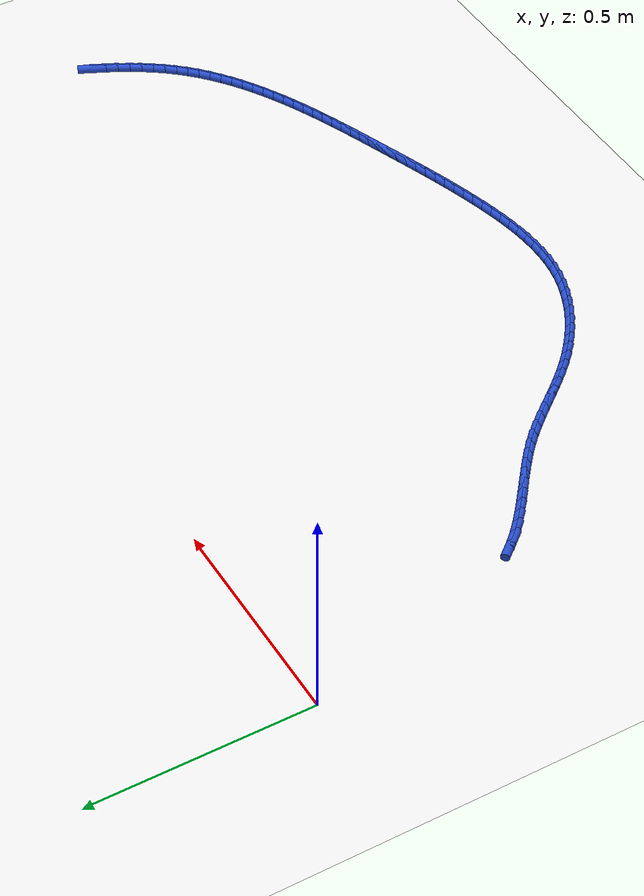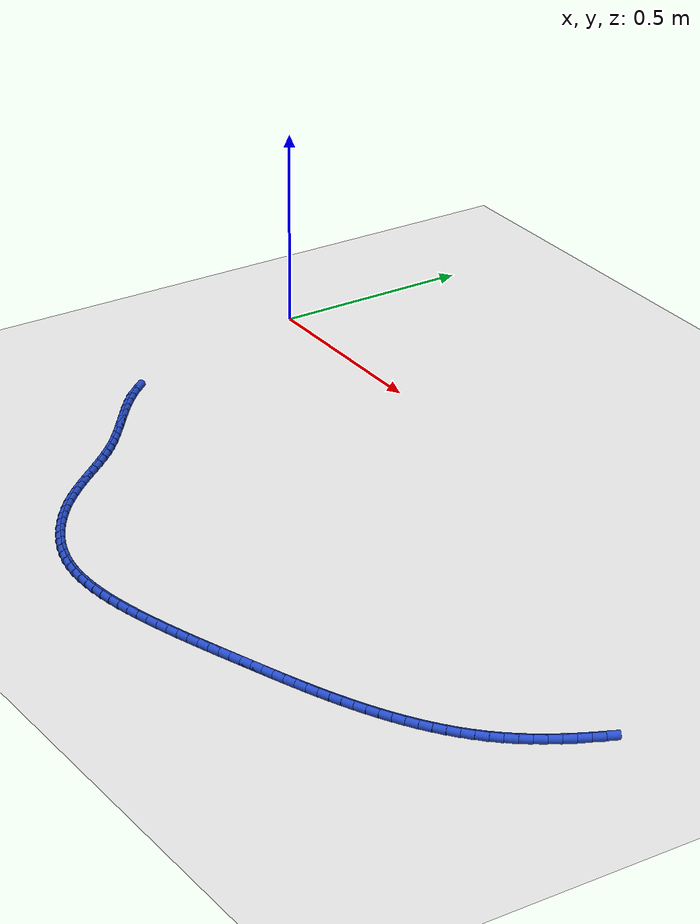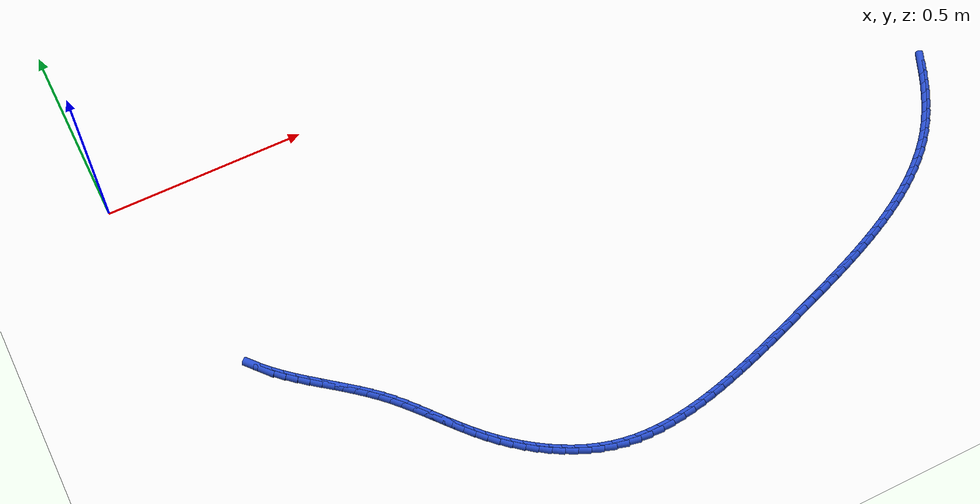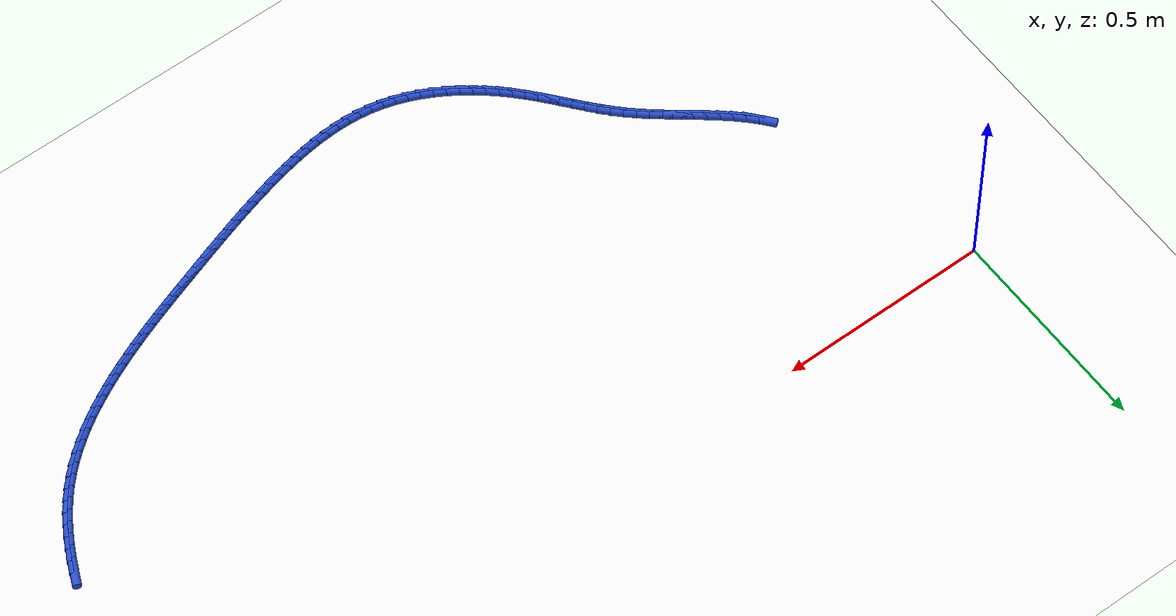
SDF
<sdf version="1.6">
 <world name="default">
  <model name="ground_plane">
   <static>1</static>
   <link name="link">
    <collision name="collision">
     <geometry><plane><normal>0 0 1</normal><size>100 100</size></plane></geometry>
     <surface><friction><ode><mu>100</mu><mu2>50</mu2></ode></friction></surface>
    </collision>
    <visual name="visual">
     <cast_shadows>0</cast_shadows>
     <geometry><plane><normal>0 0 1</normal><size>100 100</size></plane></geometry>
     <material>
      <script><uri>file://media/materials/scripts/gazebo.material</uri><name>Gazebo/WhiteGlow</name></script>
     </material>
    </visual>
   </link>
  </model>
  <model name="line">
   <link name="link_133">
    <pose>1.9867239073148415 -0.5218183314425856 0.01 0 1.57 1.1355704340477502</pose>
    <collision name="collision">
     <geometry><cylinder><radius>0.01</radius><length>0.08</length></cylinder></geometry>
    </collision>
    <visual name="visual">
     <material>
      <script><name>Gazebo/Blue</name><uri>file://media/materials/scripts/gazebo.material</uri></script>
     </material>
     <geometry><cylinder><radius>0.01</radius><length>0.08</length></cylinder></geometry>
    </visual>
   </link>
   <link name="link_134">
    <pose>1.9744909615347372 -0.5481279285984062 0.01 0 1.57 1.1009112465335507</pose>
    <collision name="collision">
     <geometry><cylinder><radius>0.01</radius><length>0.08</length></cylinder></geometry>
    </collision>
    <visual name="visual">
     <material>
      <script><name>Gazebo/Blue</name><uri>file://media/materials/scripts/gazebo.material</uri></script>
     </material>
     <geometry><cylinder><radius>0.01</radius><length>0.08</length></cylinder></geometry>
    </visual>
   </link>
   <link name="link_135">
    <pose>1.961384226178601 -0.5739376661966529 0.01 0 1.57 1.0631498887680801</pose>
    <collision name="collision">
     <geometry><cylinder><radius>0.01</radius><length>0.08</length></cylinder></geometry>
    </collision>
    <visual name="visual">
     <material>
      <script><name>Gazebo/Blue</name><uri>file://media/materials/scripts/gazebo.material</uri></script>
     </material>
     <geometry><cylinder><radius>0.01</radius><length>0.08</length></cylinder></geometry>
    </visual>
   </link>
   <link name="link_136">
    <pose>1.94735691357827 -0.5991542721897875 0.01 0 1.57 1.022128257812715</pose>
    <collision name="collision">
     <geometry><cylinder><radius>0.01</radius><length>0.08</length></cylinder></geometry>
    </collision>
    <visual name="visual">
     <material>
      <script><name>Gazebo/Blue</name><uri>file://media/materials/scripts/gazebo.material</uri></script>
     </material>
     <geometry><cylinder><radius>0.01</radius><length>0.08</length></cylinder></geometry>
    </visual>
   </link>
   <link name="link_137">
    <pose>1.9323622360655817 -0.6236844745302744 0.01 0 1.57 0.9777057370824773</pose>
    <collision name="collision">
     <geometry><cylinder><radius>0.01</radius><length>0.08</length></cylinder></geometry>
    </collision>
    <visual name="visual">
     <material>
      <script><name>Gazebo/Blue</name><uri>file://media/materials/scripts/gazebo.material</uri></script>
     </material>
     <geometry><cylinder><radius>0.01</radius><length>0.08</length></cylinder></geometry>
    </visual>
   </link>
   <link name="link_138">
    <pose>1.9163534059723704 -0.6474350011705763 0.01 0 1.57 0.9297731854314074</pose>
    <collision name="collision">
     <geometry><cylinder><radius>0.01</radius><length>0.08</length></cylinder></geometry>
    </collision>
    <visual name="visual">
     <material>
      <script><name>Gazebo/Blue</name><uri>file://media/materials/scripts/gazebo.material</uri></script>
     </material>
     <geometry><cylinder><radius>0.01</radius><length>0.08</length></cylinder></geometry>
    </visual>
   </link>
   <link name="link_139">
    <pose>1.8992836356304728 -0.6703125800631565 0.01 0 1.57 0.8782698457167788</pose>
    <collision name="collision">
     <geometry><cylinder><radius>0.01</radius><length>0.08</length></cylinder></geometry>
    </collision>
    <visual name="visual">
     <material>
      <script><name>Gazebo/Blue</name><uri>file://media/materials/scripts/gazebo.material</uri></script>
     </material>
     <geometry><cylinder><radius>0.01</radius><length>0.08</length></cylinder></geometry>
    </visual>
   </link>
   <link name="link_140">
    <pose>1.8811061373717242 -0.6922239391604789 0.01 0 1.57 0.8235190654999743</pose>
    <collision name="collision">
     <geometry><cylinder><radius>0.01</radius><length>0.08</length></cylinder></geometry>
    </collision>
    <visual name="visual">
     <material>
      <script><name>Gazebo/Blue</name><uri>file://media/materials/scripts/gazebo.material</uri></script>
     </material>
     <geometry><cylinder><radius>0.01</radius><length>0.08</length></cylinder></geometry>
    </visual>
   </link>
   <link name="link_141">
    <pose>1.861780411146011 -0.7130822599717452 0.01 0 1.57 0.7695592758564805</pose>
    <collision name="collision">
     <geometry><cylinder><radius>0.01</radius><length>0.08</length></cylinder></geometry>
    </collision>
    <visual name="visual">
     <material>
      <script><name>Gazebo/Blue</name><uri>file://media/materials/scripts/gazebo.material</uri></script>
     </material>
     <geometry><cylinder><radius>0.01</radius><length>0.08</length></cylinder></geometry>
    </visual>
   </link>
   <link name="link_142">
    <pose>1.8413442534846864 -0.7328810869396306 0.01 0 1.57 0.7191901330863374</pose>
    <collision name="collision">
     <geometry><cylinder><radius>0.01</radius><length>0.08</length></cylinder></geometry>
    </collision>
    <visual name="visual">
     <material>
      <script><name>Gazebo/Blue</name><uri>file://media/materials/scripts/gazebo.material</uri></script>
     </material>
     <geometry><cylinder><radius>0.01</radius><length>0.08</length></cylinder></geometry>
    </visual>
   </link>
   <link name="link_143">
    <pose>1.819888560487442 -0.7516684654441159 0.01 0 1.57 0.6725127650493107</pose>
    <collision name="collision">
     <geometry><cylinder><radius>0.01</radius><length>0.08</length></cylinder></geometry>
    </collision>
    <visual name="visual">
     <material>
      <script><name>Gazebo/Blue</name><uri>file://media/materials/scripts/gazebo.material</uri></script>
     </material>
     <geometry><cylinder><radius>0.01</radius><length>0.08</length></cylinder></geometry>
    </visual>
   </link>
   <link name="link_144">
    <pose>1.7975052370160765 -0.7694934762498781 0.01 0 1.57 0.6295041633422708</pose>
    <collision name="collision">
     <geometry><cylinder><radius>0.01</radius><length>0.08</length></cylinder></geometry>
    </collision>
    <visual name="visual">
     <material>
      <script><name>Gazebo/Blue</name><uri>file://media/materials/scripts/gazebo.material</uri></script>
     </material>
     <geometry><cylinder><radius>0.01</radius><length>0.08</length></cylinder></geometry>
    </visual>
   </link>
   <link name="link_145">
    <pose>1.774286187932392 -0.7864052001215918 0.01 0 1.57 0.5900876730275442</pose>
    <collision name="collision">
     <geometry><cylinder><radius>0.01</radius><length>0.08</length></cylinder></geometry>
    </collision>
    <visual name="visual">
     <material>
      <script><name>Gazebo/Blue</name><uri>file://media/materials/scripts/gazebo.material</uri></script>
     </material>
     <geometry><cylinder><radius>0.01</radius><length>0.08</length></cylinder></geometry>
    </visual>
   </link>
   <link name="link_146">
    <pose>1.7503233180981856 -0.8024527178239336 0.01 0 1.57 0.5541508712229289</pose>
    <collision name="collision">
     <geometry><cylinder><radius>0.01</radius><length>0.08</length></cylinder></geometry>
    </collision>
    <visual name="visual">
     <material>
      <script><name>Gazebo/Blue</name><uri>file://media/materials/scripts/gazebo.material</uri></script>
     </material>
     <geometry><cylinder><radius>0.01</radius><length>0.08</length></cylinder></geometry>
    </visual>
   </link>
   <link name="link_147">
    <pose>1.7257085323752583 -0.8176851101215795 0.01 0 1.57 0.5215607752642322</pose>
    <collision name="collision">
     <geometry><cylinder><radius>0.01</radius><length>0.08</length></cylinder></geometry>
    </collision>
    <visual name="visual">
     <material>
      <script><name>Gazebo/Blue</name><uri>file://media/materials/scripts/gazebo.material</uri></script>
     </material>
     <geometry><cylinder><radius>0.01</radius><length>0.08</length></cylinder></geometry>
    </visual>
   </link>
   <link name="link_148">
    <pose>1.7005337356254089 -0.8321514577792061 0.01 0 1.57 0.49217618176210837</pose>
    <collision name="collision">
     <geometry><cylinder><radius>0.01</radius><length>0.08</length></cylinder></geometry>
    </collision>
    <visual name="visual">
     <material>
      <script><name>Gazebo/Blue</name><uri>file://media/materials/scripts/gazebo.material</uri></script>
     </material>
     <geometry><cylinder><radius>0.01</radius><length>0.08</length></cylinder></geometry>
    </visual>
   </link>
   <link name="link_149">
    <pose>1.6748908327104373 -0.8459008415614885 0.01 0 1.57 0.46585733770956217</pose>
    <collision name="collision">
     <geometry><cylinder><radius>0.01</radius><length>0.08</length></cylinder></geometry>
    </collision>
    <visual name="visual">
     <material>
      <script><name>Gazebo/Blue</name><uri>file://media/materials/scripts/gazebo.material</uri></script>
     </material>
     <geometry><cylinder><radius>0.01</radius><length>0.08</length></cylinder></geometry>
    </visual>
   </link>
   <link name="link_150">
    <pose>1.648871728492143 -0.8589823422331027 0.01 0 1.57 0.442473355814777</pose>
    <collision name="collision">
     <geometry><cylinder><radius>0.01</radius><length>0.08</length></cylinder></geometry>
    </collision>
    <visual name="visual">
     <material>
      <script><name>Gazebo/Blue</name><uri>file://media/materials/scripts/gazebo.material</uri></script>
     </material>
     <geometry><cylinder><radius>0.01</radius><length>0.08</length></cylinder></geometry>
    </visual>
   </link>
   <link name="link_151">
    <pose>1.6225683278323262 -0.8714450405587253 0.01 0 1.57 0.42190786663591895</pose>
    <collision name="collision">
     <geometry><cylinder><radius>0.01</radius><length>0.08</length></cylinder></geometry>
    </collision>
    <visual name="visual">
     <material>
      <script><name>Gazebo/Blue</name><uri>file://media/materials/scripts/gazebo.material</uri></script>
     </material>
     <geometry><cylinder><radius>0.01</radius><length>0.08</length></cylinder></geometry>
    </visual>
   </link>
   <link name="link_152">
    <pose>1.5960725355927852 -0.8833380173030319 0.01 0 1.57 0.4039967235428518</pose>
    <collision name="collision">
     <geometry><cylinder><radius>0.01</radius><length>0.08</length></cylinder></geometry>
    </collision>
    <visual name="visual">
     <material>
      <script><name>Gazebo/Blue</name><uri>file://media/materials/scripts/gazebo.material</uri></script>
     </material>
     <geometry><cylinder><radius>0.01</radius><length>0.08</length></cylinder></geometry>
    </visual>
   </link>
   <link name="link_153">
    <pose>1.5694691217032577 -0.894711305892057 0.01 0 1.57 0.3882215852428918</pose>
    <collision name="collision">
     <geometry><cylinder><radius>0.01</radius><length>0.08</length></cylinder></geometry>
    </collision>
    <visual name="visual">
     <material>
      <script><name>Gazebo/Blue</name><uri>file://media/materials/scripts/gazebo.material</uri></script>
     </material>
     <geometry><cylinder><radius>0.01</radius><length>0.08</length></cylinder></geometry>
    </visual>
   </link>
   <link name="link_154">
    <pose>1.5427917059586356 -0.9056217693553249 0.01 0 1.57 0.3744124995758414</pose>
    <collision name="collision">
     <geometry><cylinder><radius>0.01</radius><length>0.08</length></cylinder></geometry>
    </collision>
    <visual name="visual">
     <material>
      <script><name>Gazebo/Blue</name><uri>file://media/materials/scripts/gazebo.material</uri></script>
     </material>
     <geometry><cylinder><radius>0.01</radius><length>0.08</length></cylinder></geometry>
    </visual>
   </link>
   <link name="link_155">
    <pose>1.5160515870481075 -0.9161292510527522 0.01 0 1.57 0.3626100989673768</pose>
    <collision name="collision">
     <geometry><cylinder><radius>0.01</radius><length>0.08</length></cylinder></geometry>
    </collision>
    <visual name="visual">
     <material>
      <script><name>Gazebo/Blue</name><uri>file://media/materials/scripts/gazebo.material</uri></script>
     </material>
     <geometry><cylinder><radius>0.01</radius><length>0.08</length></cylinder></geometry>
    </visual>
   </link>
   <link name="link_156">
    <pose>1.48925997069777 -0.9262936067567561 0.01 0 1.57 0.35284749316833885</pose>
    <collision name="collision">
     <geometry><cylinder><radius>0.01</radius><length>0.08</length></cylinder></geometry>
    </collision>
    <visual name="visual">
     <material>
      <script><name>Gazebo/Blue</name><uri>file://media/materials/scripts/gazebo.material</uri></script>
     </material>
     <geometry><cylinder><radius>0.01</radius><length>0.08</length></cylinder></geometry>
    </visual>
   </link>
   <link name="link_157">
    <pose>1.4624280626337178 -0.9361746922397538 0.01 0 1.57 0.34515057951065875</pose>
    <collision name="collision">
     <geometry><cylinder><radius>0.01</radius><length>0.08</length></cylinder></geometry>
    </collision>
    <visual name="visual">
     <material>
      <script><name>Gazebo/Blue</name><uri>file://media/materials/scripts/gazebo.material</uri></script>
     </material>
     <geometry><cylinder><radius>0.01</radius><length>0.08</length></cylinder></geometry>
    </visual>
   </link>
   <link name="link_158">
    <pose>1.4355670685820485 -0.9458323632741619 0.01 0 1.57 0.33953908817157485</pose>
    <collision name="collision">
     <geometry><cylinder><radius>0.01</radius><length>0.08</length></cylinder></geometry>
    </collision>
    <visual name="visual">
     <material>
      <script><name>Gazebo/Blue</name><uri>file://media/materials/scripts/gazebo.material</uri></script>
     </material>
     <geometry><cylinder><radius>0.01</radius><length>0.08</length></cylinder></geometry>
    </visual>
   </link>
   <link name="link_159">
    <pose>1.4086881942688558 -0.9553264756323973 0.01 0 1.57 0.3360274471406256</pose>
    <collision name="collision">
     <geometry><cylinder><radius>0.01</radius><length>0.08</length></cylinder></geometry>
    </collision>
    <visual name="visual">
     <material>
      <script><name>Gazebo/Blue</name><uri>file://media/materials/scripts/gazebo.material</uri></script>
     </material>
     <geometry><cylinder><radius>0.01</radius><length>0.08</length></cylinder></geometry>
    </visual>
   </link>
   <link name="link_160">
    <pose>1.3818026454202377 -0.964716885086878 0.01 0 1.57 0.33458850268933266</pose>
    <collision name="collision">
     <geometry><cylinder><radius>0.01</radius><length>0.08</length></cylinder></geometry>
    </collision>
    <visual name="visual">
     <material>
      <script><name>Gazebo/Blue</name><uri>file://media/materials/scripts/gazebo.material</uri></script>
     </material>
     <geometry><cylinder><radius>0.01</radius><length>0.08</length></cylinder></geometry>
    </visual>
   </link>
   <link name="link_161">
    <pose>1.3549212286706085 -0.974062473459387 0.01 0 1.57 0.3336287481338967</pose>
    <collision name="collision">
     <geometry><cylinder><radius>0.01</radius><length>0.08</length></cylinder></geometry>
    </collision>
    <visual name="visual">
     <material>
      <script><name>Gazebo/Blue</name><uri>file://media/materials/scripts/gazebo.material</uri></script>
     </material>
     <geometry><cylinder><radius>0.01</radius><length>0.08</length></cylinder></geometry>
    </visual>
   </link>
   <link name="link_162">
    <pose>1.3280374752775528 -0.9833799634261629 0.01 0 1.57 0.3309738961476484</pose>
    <collision name="collision">
     <geometry><cylinder><radius>0.01</radius><length>0.08</length></cylinder></geometry>
    </collision>
    <visual name="visual">
     <material>
      <script><name>Gazebo/Blue</name><uri>file://media/materials/scripts/gazebo.material</uri></script>
     </material>
     <geometry><cylinder><radius>0.01</radius><length>0.08</length></cylinder></geometry>
    </visual>
   </link>
   <link name="link_163">
    <pose>1.3011213998812154 -0.9926286872801746 0.01 0 1.57 0.3264739928242813</pose>
    <collision name="collision">
     <geometry><cylinder><radius>0.01</radius><length>0.08</length></cylinder></geometry>
    </collision>
    <visual name="visual">
     <material>
      <script><name>Gazebo/Blue</name><uri>file://media/materials/scripts/gazebo.material</uri></script>
     </material>
     <geometry><cylinder><radius>0.01</radius><length>0.08</length></cylinder></geometry>
    </visual>
   </link>
   <link name="link_164">
    <pose>1.274141332440393 -1.0017638659872274 0.01 0 1.57 0.3201412493312362</pose>
    <collision name="collision">
     <geometry><cylinder><radius>0.01</radius><length>0.08</length></cylinder></geometry>
    </collision>
    <visual name="visual">
     <material>
      <script><name>Gazebo/Blue</name><uri>file://media/materials/scripts/gazebo.material</uri></script>
     </material>
     <geometry><cylinder><radius>0.01</radius><length>0.08</length></cylinder></geometry>
    </visual>
   </link>
   <link name="link_165">
    <pose>1.2470656029138842 -1.0107407205131271 0.01 0 1.57 0.3119945121499067</pose>
    <collision name="collision">
     <geometry><cylinder><radius>0.01</radius><length>0.08</length></cylinder></geometry>
    </collision>
    <visual name="visual">
     <material>
      <script><name>Gazebo/Blue</name><uri>file://media/materials/scripts/gazebo.material</uri></script>
     </material>
     <geometry><cylinder><radius>0.01</radius><length>0.08</length></cylinder></geometry>
    </visual>
   </link>
   <link name="link_166">
    <pose>1.2198625412604853 -1.0195144718236786 0.01 0 1.57 0.30205973185132556</pose>
    <collision name="collision">
     <geometry><cylinder><radius>0.01</radius><length>0.08</length></cylinder></geometry>
    </collision>
    <visual name="visual">
     <material>
      <script><name>Gazebo/Blue</name><uri>file://media/materials/scripts/gazebo.material</uri></script>
     </material>
     <geometry><cylinder><radius>0.01</radius><length>0.08</length></cylinder></geometry>
    </visual>
   </link>
   <link name="link_167">
    <pose>1.1925004774389965 -1.0280403408846877 0.01 0 1.57 0.290370515731676</pose>
    <collision name="collision">
     <geometry><cylinder><radius>0.01</radius><length>0.08</length></cylinder></geometry>
    </collision>
    <visual name="visual">
     <material>
      <script><name>Gazebo/Blue</name><uri>file://media/materials/scripts/gazebo.material</uri></script>
     </material>
     <geometry><cylinder><radius>0.01</radius><length>0.08</length></cylinder></geometry>
    </visual>
   </link>
   <link name="link_168">
    <pose>1.1649477414082139 -1.0362735486619585 0.01 0 1.57 0.2769687291960932</pose>
    <collision name="collision">
     <geometry><cylinder><radius>0.01</radius><length>0.08</length></cylinder></geometry>
    </collision>
    <visual name="visual">
     <material>
      <script><name>Gazebo/Blue</name><uri>file://media/materials/scripts/gazebo.material</uri></script>
     </material>
     <geometry><cylinder><radius>0.01</radius><length>0.08</length></cylinder></geometry>
    </visual>
   </link>
   <link name="link_169">
    <pose>1.1371726631269363 -1.0441693161212977 0.01 0 1.57 0.2619050961271493</pose>
    <collision name="collision">
     <geometry><cylinder><radius>0.01</radius><length>0.08</length></cylinder></geometry>
    </collision>
    <visual name="visual">
     <material>
      <script><name>Gazebo/Blue</name><uri>file://media/materials/scripts/gazebo.material</uri></script>
     </material>
     <geometry><cylinder><radius>0.01</radius><length>0.08</length></cylinder></geometry>
    </visual>
   </link>
   <link name="link_170">
    <pose>1.1091435727596464 -1.051682863975276 0.01 0 1.57 0.244702058519654</pose>
    <collision name="collision">
     <geometry><cylinder><radius>0.01</radius><length>0.08</length></cylinder></geometry>
    </collision>
    <visual name="visual">
     <material>
      <script><name>Gazebo/Blue</name><uri>file://media/materials/scripts/gazebo.material</uri></script>
     </material>
     <geometry><cylinder><radius>0.01</radius><length>0.08</length></cylinder></geometry>
    </visual>
   </link>
   <link name="link_171">
    <pose>1.0808452828608117 -1.0587491203726416 0.01 0 1.57 0.2233496368012014</pose>
    <collision name="collision">
     <geometry><cylinder><radius>0.01</radius><length>0.08</length></cylinder></geometry>
    </collision>
    <visual name="visual">
     <material>
      <script><name>Gazebo/Blue</name><uri>file://media/materials/scripts/gazebo.material</uri></script>
     </material>
     <geometry><cylinder><radius>0.01</radius><length>0.08</length></cylinder></geometry>
    </visual>
   </link>
   <link name="link_172">
    <pose>1.0523240052029978 -1.065227420811234 0.01 0 1.57 0.1972389971974994</pose>
    <collision name="collision">
     <geometry><cylinder><radius>0.01</radius><length>0.08</length></cylinder></geometry>
    </collision>
    <visual name="visual">
     <material>
      <script><name>Gazebo/Blue</name><uri>file://media/materials/scripts/gazebo.material</uri></script>
     </material>
     <geometry><cylinder><radius>0.01</radius><length>0.08</length></cylinder></geometry>
    </visual>
   </link>
   <link name="link_173">
    <pose>1.0236402456058873 -1.0709595024391545 0.01 0 1.57 0.16616175600668734</pose>
    <collision name="collision">
     <geometry><cylinder><radius>0.01</radius><length>0.08</length></cylinder></geometry>
    </collision>
    <visual name="visual">
     <material>
      <script><name>Gazebo/Blue</name><uri>file://media/materials/scripts/gazebo.material</uri></script>
     </material>
     <geometry><cylinder><radius>0.01</radius><length>0.08</length></cylinder></geometry>
    </visual>
   </link>
   <link name="link_174">
    <pose>0.9948545098891645 -1.0757871024045045 0.01 0 1.57 0.12986574938389828</pose>
    <collision name="collision">
     <geometry><cylinder><radius>0.01</radius><length>0.08</length></cylinder></geometry>
    </collision>
    <visual name="visual">
     <material>
      <script><name>Gazebo/Blue</name><uri>file://media/materials/scripts/gazebo.material</uri></script>
     </material>
     <geometry><cylinder><radius>0.01</radius><length>0.08</length></cylinder></geometry>
    </visual>
   </link>
   <link name="link_175">
    <pose>0.9660273038725108 -1.079551957855385 0.01 0 1.57 0.08807456302730408</pose>
    <collision name="collision">
     <geometry><cylinder><radius>0.01</radius><length>0.08</length></cylinder></geometry>
    </collision>
    <visual name="visual">
     <material>
      <script><name>Gazebo/Blue</name><uri>file://media/materials/scripts/gazebo.material</uri></script>
     </material>
     <geometry><cylinder><radius>0.01</radius><length>0.08</length></cylinder></geometry>
    </visual>
   </link>
   <link name="link_176">
    <pose>0.9372191333756118 -1.082095805939898 0.01 0 1.57 0.04051500631087667</pose>
    <collision name="collision">
     <geometry><cylinder><radius>0.01</radius><length>0.08</length></cylinder></geometry>
    </collision>
    <visual name="visual">
     <material>
      <script><name>Gazebo/Blue</name><uri>file://media/materials/scripts/gazebo.material</uri></script>
     </material>
     <geometry><cylinder><radius>0.01</radius><length>0.08</length></cylinder></geometry>
    </visual>
   </link>
   <link name="link_177">
    <pose>0.9084905042181497 -1.0832603838061445 0.01 0 1.57 -0.01304485995984045</pose>
    <collision name="collision">
     <geometry><cylinder><radius>0.01</radius><length>0.08</length></cylinder></geometry>
    </collision>
    <visual name="visual">
     <material>
      <script><name>Gazebo/Blue</name><uri>file://media/materials/scripts/gazebo.material</uri></script>
     </material>
     <geometry><cylinder><radius>0.01</radius><length>0.08</length></cylinder></geometry>
    </visual>
   </link>
   <link name="link_178">
    <pose>0.8799019222198077 -1.0828874286022259 0.01 0 1.57 -0.0727454740065011</pose>
    <collision name="collision">
     <geometry><cylinder><radius>0.01</radius><length>0.08</length></cylinder></geometry>
    </collision>
    <visual name="visual">
     <material>
      <script><name>Gazebo/Blue</name><uri>file://media/materials/scripts/gazebo.material</uri></script>
     </material>
     <geometry><cylinder><radius>0.01</radius><length>0.08</length></cylinder></geometry>
    </visual>
   </link>
   <link name="link_179">
    <pose>0.851513893200269 -1.0808186774762436 0.01 0 1.57 -0.138574047066595</pose>
    <collision name="collision">
     <geometry><cylinder><radius>0.01</radius><length>0.08</length></cylinder></geometry>
    </collision>
    <visual name="visual">
     <material>
      <script><name>Gazebo/Blue</name><uri>file://media/materials/scripts/gazebo.material</uri></script>
     </material>
     <geometry><cylinder><radius>0.01</radius><length>0.08</length></cylinder></geometry>
    </visual>
   </link>
   <link name="link_180">
    <pose>0.8233869229792175 -1.076895867576299 0.01 0 1.57 -0.21003463674998146</pose>
    <collision name="collision">
     <geometry><cylinder><radius>0.01</radius><length>0.08</length></cylinder></geometry>
    </collision>
    <visual name="visual">
     <material>
      <script><name>Gazebo/Blue</name><uri>file://media/materials/scripts/gazebo.material</uri></script>
     </material>
     <geometry><cylinder><radius>0.01</radius><length>0.08</length></cylinder></geometry>
    </visual>
   </link>
   <link name="link_181">
    <pose>0.7955817667061804 -1.0709684017616947 0.01 0 1.57 -0.2818162805555545</pose>
    <collision name="collision">
     <geometry><cylinder><radius>0.01</radius><length>0.08</length></cylinder></geometry>
    </collision>
    <visual name="visual">
     <material>
      <script><name>Gazebo/Blue</name><uri>file://media/materials/scripts/gazebo.material</uri></script>
     </material>
     <geometry><cylinder><radius>0.01</radius><length>0.08</length></cylinder></geometry>
    </visual>
   </link>
   <link name="link_182">
    <pose>0.7681638841128765 -1.063030326500324 0.01 0 1.57 -0.34948112829810174</pose>
    <collision name="collision">
     <geometry><cylinder><radius>0.01</radius><length>0.08</length></cylinder></geometry>
    </collision>
    <visual name="visual">
     <material>
      <script><name>Gazebo/Blue</name><uri>file://media/materials/scripts/gazebo.material</uri></script>
     </material>
     <geometry><cylinder><radius>0.01</radius><length>0.08</length></cylinder></geometry>
    </visual>
   </link>
   <link name="link_183">
    <pose>0.7412029297872796 -1.053204660211581 0.01 0 1.57 -0.41306902125236916</pose>
    <collision name="collision">
     <geometry><cylinder><radius>0.01</radius><length>0.08</length></cylinder></geometry>
    </collision>
    <visual name="visual">
     <material>
      <script><name>Gazebo/Blue</name><uri>file://media/materials/scripts/gazebo.material</uri></script>
     </material>
     <geometry><cylinder><radius>0.01</radius><length>0.08</length></cylinder></geometry>
    </visual>
   </link>
   <link name="link_184">
    <pose>0.7147687052815589 -1.0416189397674733 0.01 0 1.57 -0.47287448356584016</pose>
    <collision name="collision">
     <geometry><cylinder><radius>0.01</radius><length>0.08</length></cylinder></geometry>
    </collision>
    <visual name="visual">
     <material>
      <script><name>Gazebo/Blue</name><uri>file://media/materials/scripts/gazebo.material</uri></script>
     </material>
     <geometry><cylinder><radius>0.01</radius><length>0.08</length></cylinder></geometry>
    </visual>
   </link>
   <link name="link_185">
    <pose>0.6889310121478861 -1.0284007020400099 0.01 0 1.57 -0.5292570544117625</pose>
    <collision name="collision">
     <geometry><cylinder><radius>0.01</radius><length>0.08</length></cylinder></geometry>
    </collision>
    <visual name="visual">
     <material>
      <script><name>Gazebo/Blue</name><uri>file://media/materials/scripts/gazebo.material</uri></script>
     </material>
     <geometry><cylinder><radius>0.01</radius><length>0.08</length></cylinder></geometry>
    </visual>
   </link>
   <link name="link_186">
    <pose>0.6637596519384305 -1.0136774839011984 0.01 0 1.57 -0.5826147057973914</pose>
    <collision name="collision">
     <geometry><cylinder><radius>0.01</radius><length>0.08</length></cylinder></geometry>
    </collision>
    <visual name="visual">
     <material>
      <script><name>Gazebo/Blue</name><uri>file://media/materials/scripts/gazebo.material</uri></script>
     </material>
     <geometry><cylinder><radius>0.01</radius><length>0.08</length></cylinder></geometry>
    </visual>
   </link>
   <link name="link_187">
    <pose>0.6393244262053619 -0.997576822223048 0.01 0 1.57 -0.6333656351222856</pose>
    <collision name="collision">
     <geometry><cylinder><radius>0.01</radius><length>0.08</length></cylinder></geometry>
    </collision>
    <visual name="visual">
     <material>
      <script><name>Gazebo/Blue</name><uri>file://media/materials/scripts/gazebo.material</uri></script>
     </material>
     <geometry><cylinder><radius>0.01</radius><length>0.08</length></cylinder></geometry>
    </visual>
   </link>
   <link name="link_188">
    <pose>0.6156951365008503 -0.9802262538775661 0.01 0 1.57 -0.6819372674904628</pose>
    <collision name="collision">
     <geometry><cylinder><radius>0.01</radius><length>0.08</length></cylinder></geometry>
    </collision>
    <visual name="visual">
     <material>
      <script><name>Gazebo/Blue</name><uri>file://media/materials/scripts/gazebo.material</uri></script>
     </material>
     <geometry><cylinder><radius>0.01</radius><length>0.08</length></cylinder></geometry>
    </visual>
   </link>
   <link name="link_189">
    <pose>0.5929415843770668 -0.9617533157367619 0.01 0 1.57 -0.7287611028024382</pose>
    <collision name="collision">
     <geometry><cylinder><radius>0.01</radius><length>0.08</length></cylinder></geometry>
    </collision>
    <visual name="visual">
     <material>
      <script><name>Gazebo/Blue</name><uri>file://media/materials/scripts/gazebo.material</uri></script>
     </material>
     <geometry><cylinder><radius>0.01</radius><length>0.08</length></cylinder></geometry>
    </visual>
   </link>
   <link name="link_190">
    <pose>0.5711335713861803 -0.942285544672643 0.01 0 1.57 -0.7742454677185495</pose>
    <collision name="collision">
     <geometry><cylinder><radius>0.01</radius><length>0.08</length></cylinder></geometry>
    </collision>
    <visual name="visual">
     <material>
      <script><name>Gazebo/Blue</name><uri>file://media/materials/scripts/gazebo.material</uri></script>
     </material>
     <geometry><cylinder><radius>0.01</radius><length>0.08</length></cylinder></geometry>
    </visual>
   </link>
   <link name="link_191">
    <pose>0.5503399697036735 -0.9219506555505931 0.01 0 1.57 -0.8158953214394845</pose>
    <collision name="collision">
     <geometry><cylinder><radius>0.01</radius><length>0.08</length></cylinder></geometry>
    </collision>
    <visual name="visual">
     <material>
      <script><name>Gazebo/Blue</name><uri>file://media/materials/scripts/gazebo.material</uri></script>
     </material>
     <geometry><cylinder><radius>0.01</radius><length>0.08</length></cylinder></geometry>
    </visual>
   </link>
   <link name="link_192">
    <pose>0.5305311682706714 -0.9008952246550503 0.01 0 1.57 -0.8482296808982235</pose>
    <collision name="collision">
     <geometry><cylinder><radius>0.01</radius><length>0.08</length></cylinder></geometry>
    </collision>
    <visual name="visual">
     <material>
      <script><name>Gazebo/Blue</name><uri>file://media/materials/scripts/gazebo.material</uri></script>
     </material>
     <geometry><cylinder><radius>0.01</radius><length>0.08</length></cylinder></geometry>
    </visual>
   </link>
   <link name="link_193">
    <pose>0.5114933756610898 -0.8793011023260954 0.01 0 1.57 -0.8703967193521686</pose>
    <collision name="collision">
     <geometry><cylinder><radius>0.01</radius><length>0.08</length></cylinder></geometry>
    </collision>
    <visual name="visual">
     <material>
      <script><name>Gazebo/Blue</name><uri>file://media/materials/scripts/gazebo.material</uri></script>
     </material>
     <geometry><cylinder><radius>0.01</radius><length>0.08</length></cylinder></geometry>
    </visual>
   </link>
   <link name="link_194">
    <pose>0.4929925961677169 -0.8573540084092662 0.01 0 1.57 -0.8822506908091439</pose>
    <collision name="collision">
     <geometry><cylinder><radius>0.01</radius><length>0.08</length></cylinder></geometry>
    </collision>
    <visual name="visual">
     <material>
      <script><name>Gazebo/Blue</name><uri>file://media/materials/scripts/gazebo.material</uri></script>
     </material>
     <geometry><cylinder><radius>0.01</radius><length>0.08</length></cylinder></geometry>
    </visual>
   </link>
   <link name="link_195">
    <pose>0.4747948340833416 -0.8352396627501023 0.01 0 1.57 -0.8837048569369792</pose>
    <collision name="collision">
     <geometry><cylinder><radius>0.01</radius><length>0.08</length></cylinder></geometry>
    </collision>
    <visual name="visual">
     <material>
      <script><name>Gazebo/Blue</name><uri>file://media/materials/scripts/gazebo.material</uri></script>
     </material>
     <geometry><cylinder><radius>0.01</radius><length>0.08</length></cylinder></geometry>
    </visual>
   </link>
   <link name="link_196">
    <pose>0.4566660937007528 -0.8131437851941423 0.01 0 1.57 -0.8746944393276725</pose>
    <collision name="collision">
     <geometry><cylinder><radius>0.01</radius><length>0.08</length></cylinder></geometry>
    </collision>
    <visual name="visual">
     <material>
      <script><name>Gazebo/Blue</name><uri>file://media/materials/scripts/gazebo.material</uri></script>
     </material>
     <geometry><cylinder><radius>0.01</radius><length>0.08</length></cylinder></geometry>
    </visual>
   </link>
   <link name="link_197">
    <pose>0.438372379312739 -0.7912520955869244 0.01 0 1.57 -0.8551723854237575</pose>
    <collision name="collision">
     <geometry><cylinder><radius>0.01</radius><length>0.08</length></cylinder></geometry>
    </collision>
    <visual name="visual">
     <material>
      <script><name>Gazebo/Blue</name><uri>file://media/materials/scripts/gazebo.material</uri></script>
     </material>
     <geometry><cylinder><radius>0.01</radius><length>0.08</length></cylinder></geometry>
    </visual>
   </link>
   <link name="link_198">
    <pose>0.4196796952120896 -0.7697503137739888 0.01 0 1.57 -0.8251395368799477</pose>
    <collision name="collision">
     <geometry><cylinder><radius>0.01</radius><length>0.08</length></cylinder></geometry>
    </collision>
    <visual name="visual">
     <material>
      <script><name>Gazebo/Blue</name><uri>file://media/materials/scripts/gazebo.material</uri></script>
     </material>
     <geometry><cylinder><radius>0.01</radius><length>0.08</length></cylinder></geometry>
    </visual>
   </link>
   <link name="link_199">
    <pose>0.40035404569159333 -0.7488241596008741 0.01 0 1.57 -0.7847913661163138</pose>
    <collision name="collision">
     <geometry><cylinder><radius>0.01</radius><length>0.08</length></cylinder></geometry>
    </collision>
    <visual name="visual">
     <material>
      <script><name>Gazebo/Blue</name><uri>file://media/materials/scripts/gazebo.material</uri></script>
     </material>
     <geometry><cylinder><radius>0.01</radius><length>0.08</length></cylinder></geometry>
    </visual>
   </link>
   <link name="link_200">
    <pose>0.38016325704497816 -0.7286578595289734 0.01 0 1.57 -0.7414742080413351</pose>
    <collision name="collision">
     <geometry><cylinder><radius>0.01</radius><length>0.08</length></cylinder></geometry>
    </collision>
    <visual name="visual">
     <material>
      <script><name>Gazebo/Blue</name><uri>file://media/materials/scripts/gazebo.material</uri></script>
     </material>
     <geometry><cylinder><radius>0.01</radius><length>0.08</length></cylinder></geometry>
    </visual>
   </link>
   <link name="link_201">
    <pose>0.3590326657956663 -0.7093065383959062 0.01 0 1.57 -0.7076740789658043</pose>
    <collision name="collision">
     <geometry><cylinder><radius>0.01</radius><length>0.08</length></cylinder></geometry>
    </collision>
    <visual name="visual">
     <material>
      <script><name>Gazebo/Blue</name><uri>file://media/materials/scripts/gazebo.material</uri></script>
     </material>
     <geometry><cylinder><radius>0.01</radius><length>0.08</length></cylinder></geometry>
    </visual>
   </link>
   <link name="link_202">
    <pose>0.337164429491802 -0.6905984275616076 0.01 0 1.57 -0.6844526951829178</pose>
    <collision name="collision">
     <geometry><cylinder><radius>0.01</radius><length>0.08</length></cylinder></geometry>
    </collision>
    <visual name="visual">
     <material>
      <script><name>Gazebo/Blue</name><uri>file://media/materials/scripts/gazebo.material</uri></script>
     </material>
     <geometry><cylinder><radius>0.01</radius><length>0.08</length></cylinder></geometry>
    </visual>
   </link>
   <link name="link_203">
    <pose>0.3147887950760102 -0.6723387352055785 0.01 0 1.57 -0.6716063012921822</pose>
    <collision name="collision">
     <geometry><cylinder><radius>0.01</radius><length>0.08</length></cylinder></geometry>
    </collision>
    <visual name="visual">
     <material>
      <script><name>Gazebo/Blue</name><uri>file://media/materials/scripts/gazebo.material</uri></script>
     </material>
     <geometry><cylinder><radius>0.01</radius><length>0.08</length></cylinder></geometry>
    </visual>
   </link>
   <link name="link_204">
    <pose>0.29213600949091606 -0.6543326695073194 0.01 0 1.57 -0.6690061029916796</pose>
    <collision name="collision">
     <geometry><cylinder><radius>0.01</radius><length>0.08</length></cylinder></geometry>
    </collision>
    <visual name="visual">
     <material>
      <script><name>Gazebo/Blue</name><uri>file://media/materials/scripts/gazebo.material</uri></script>
     </material>
     <geometry><cylinder><radius>0.01</radius><length>0.08</length></cylinder></geometry>
    </visual>
   </link>
   <link name="link_205">
    <pose>0.269436319679145 -0.6363854386463313 0.01 0 1.57 -0.6766366856226156</pose>
    <collision name="collision">
     <geometry><cylinder><radius>0.01</radius><length>0.08</length></cylinder></geometry>
    </collision>
    <visual name="visual">
     <material>
      <script><name>Gazebo/Blue</name><uri>file://media/materials/scripts/gazebo.material</uri></script>
     </material>
     <geometry><cylinder><radius>0.01</radius><length>0.08</length></cylinder></geometry>
    </visual>
   </link>
   <link name="link_206">
    <pose>0.24691997258332177 -0.6183022508021148 0.01 0 1.57 -0.6946040120778412</pose>
    <collision name="collision">
     <geometry><cylinder><radius>0.01</radius><length>0.08</length></cylinder></geometry>
    </collision>
    <visual name="visual">
     <material>
      <script><name>Gazebo/Blue</name><uri>file://media/materials/scripts/gazebo.material</uri></script>
     </material>
     <geometry><cylinder><radius>0.01</radius><length>0.08</length></cylinder></geometry>
    </visual>
   </link>
   <link name="link_207">
    <pose>0.22481721514607275 -0.5998883141541715 0.01 0 1.57 -0.7231138917247393</pose>
    <collision name="collision">
     <geometry><cylinder><radius>0.01</radius><length>0.08</length></cylinder></geometry>
    </collision>
    <visual name="visual">
     <material>
      <script><name>Gazebo/Blue</name><uri>file://media/materials/scripts/gazebo.material</uri></script>
     </material>
     <geometry><cylinder><radius>0.01</radius><length>0.08</length></cylinder></geometry>
    </visual>
   </link>
   <link name="link_208">
    <pose>0.20335829431002278 -0.5809488368820019 0.01 0 1.57 -0.762417101476495</pose>
    <collision name="collision">
     <geometry><cylinder><radius>0.01</radius><length>0.08</length></cylinder></geometry>
    </collision>
    <visual name="visual">
     <material>
      <script><name>Gazebo/Blue</name><uri>file://media/materials/scripts/gazebo.material</uri></script>
     </material>
     <geometry><cylinder><radius>0.01</radius><length>0.08</length></cylinder></geometry>
    </visual>
   </link>
   <link name="link_209">
    <pose>0.1827734570177971 -0.5612890271651069 0.01 0 1.57 -0.812714176744942</pose>
    <collision name="collision">
     <geometry><cylinder><radius>0.01</radius><length>0.08</length></cylinder></geometry>
    </collision>
    <visual name="visual">
     <material>
      <script><name>Gazebo/Blue</name><uri>file://media/materials/scripts/gazebo.material</uri></script>
     </material>
     <geometry><cylinder><radius>0.01</radius><length>0.08</length></cylinder></geometry>
    </visual>
   </link>
   <link name="link_210">
    <pose>0.1632929502120205 -0.5407140931829866 0.01 0 1.57 -0.8740143212553597</pose>
    <collision name="collision">
     <geometry><cylinder><radius>0.01</radius><length>0.08</length></cylinder></geometry>
    </collision>
    <visual name="visual">
     <material>
      <script><name>Gazebo/Blue</name><uri>file://media/materials/scripts/gazebo.material</uri></script>
     </material>
     <geometry><cylinder><radius>0.01</radius><length>0.08</length></cylinder></geometry>
    </visual>
   </link>
  </model>
 </world>
</sdf>
